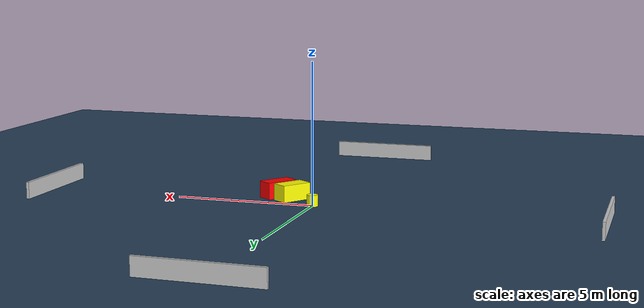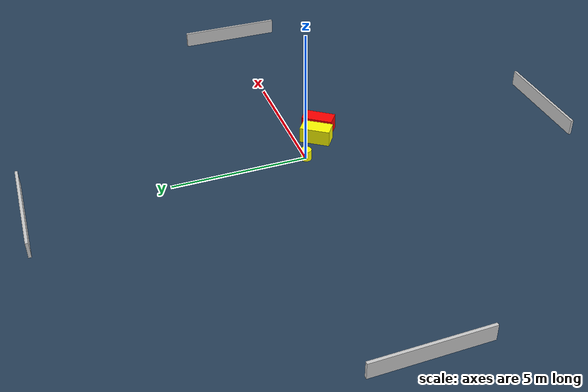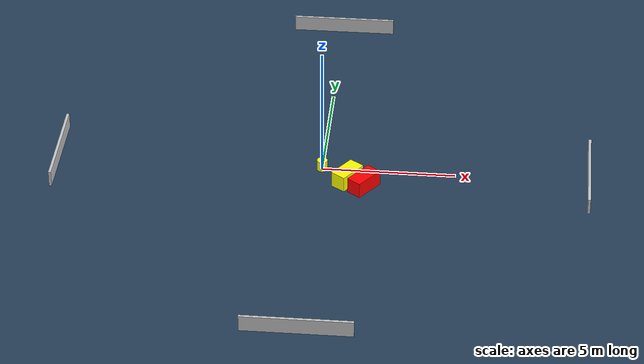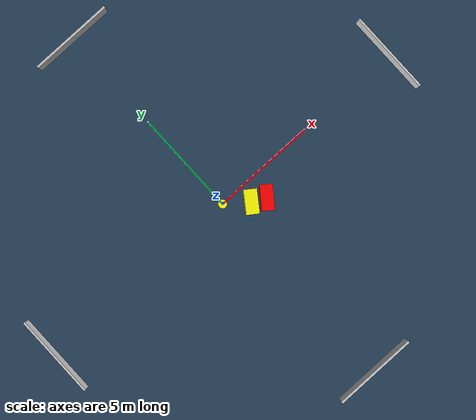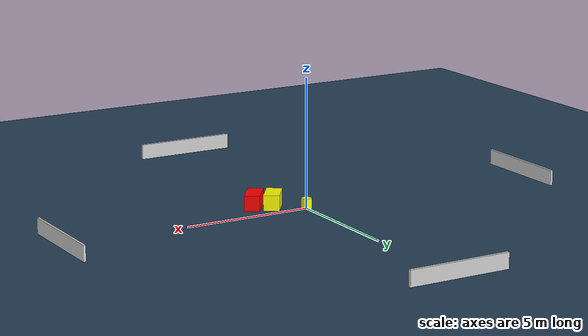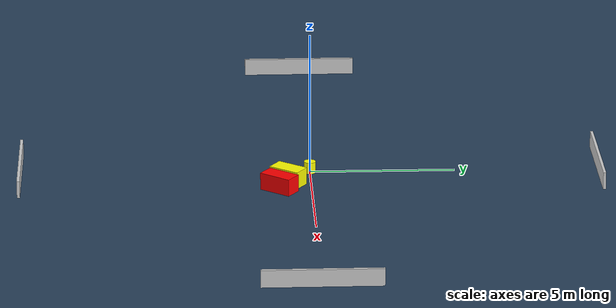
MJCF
<?xml version="1.0" ?>
<mujoco model="generated_environment">
  <option timestep="0.01" integrator="RK4" cone="elliptic"/>
  <default>
    <geom density="1"/>
  </default>
  <asset>
    <texture builtin="gradient" height="3072" name="skybox" rgb1="0.3 0.5 0.7" rgb2="0 0 0" type="skybox" width="512"/>
    <texture builtin="checker" height="300" name="groundplane" rgb1="0.2 0.3 0.4" rgb2="0.1 0.2 0.3" type="2d" width="300"/>
    <material name="groundplane" reflectance="0.2" texrepeat="5 5" texture="groundplane"/>
  </asset>
  <worldbody>
    <light dir="0 0 -1" directional="true" pos="0 0 1.5"/>
    <geom condim="3" friction="0.5 0.005 0.001" material="groundplane" name="floor" pos="0 0 0" size="0 0 0.05" type="plane"/>
    <body name="walls">
      <geom name="wall_1" condim="4" pos="-10.0 0.0 0.3" rgba="0.800000011920929 0.800000011920929 0.800000011920929 1.0" size="0.05 2.0 0.3" type="box"/>
      <geom name="wall_2" condim="4" pos="10.0 0.0 0.3" rgba="0.800000011920929 0.800000011920929 0.800000011920929 1.0" size="0.05 2.0 0.3" type="box"/>
      <geom name="wall_3" condim="4" pos="0.0 -10.0 0.3" rgba="0.800000011920929 0.800000011920929 0.800000011920929 1.0" size="2.0 0.05 0.3" type="box"/>
      <geom name="wall_4" condim="4" pos="0.0 10.0 0.3" rgba="0.800000011920929 0.800000011920929 0.800000011920929 1.0" size="2.0 0.05 0.3" type="box"/>
    </body>
    <body name="robot">
      <joint name="joint_x" type="slide" pos="0 0 0" axis="1 0 0"/>
      <joint name="joint_y" type="slide" pos="0 0 0" axis="0 1 0"/>
      <geom name="robot" type="cylinder" pos="0.0 0.0 0.2" size="0.2 0.2 0.0" mass="5.0" friction="1.0 0.005 0.0001" condim="4" rgba="1.0 1.0 0.0 1.0"/>
    </body>
    <body name="obstacle_1_movable">
      <geom name="obstacle_1_movable" condim="4" pos="1.010514376911625 -0.7854777801140082 0.3" euler="0 0 144.57331969097038" friction="0.0 0.005 0.001" rgba="1.0 1.0 0.0 1.0" size="0.3024763119254673 0.562810161317234 0.3" type="box" mass="0.1"/>
      <joint type="free"/>
    </body>
    <body name="obstacle_2_static">
      <geom name="obstacle_2_static" condim="4" pos="1.6488861535340873 -1.1114153867500922 0.3" euler="0 0 233.38958235006993" friction="0.0 0.005 0.001" rgba="1.0 0.0 0.0 1.0" size="0.587025830843446 0.2941105465353872 0.3" type="box"/>
    </body>
  </worldbody>
  <actuator>
    <motor name="actuator_x" joint="joint_x" gear="1" ctrlrange="-1 1"/>
    <motor name="actuator_y" joint="joint_y" gear="1" ctrlrange="-1 1"/>
  </actuator>
</mujoco>
